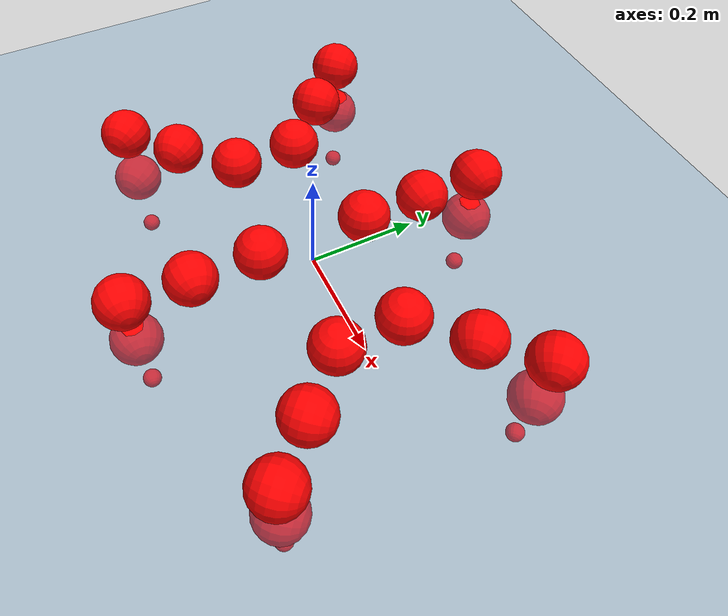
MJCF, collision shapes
<mujoco model="Golem">
  <compiler angle="radian" assetdir="assets" balanceinertia="true" inertiafromgeom="false"/>

  <option timestep="0.005" density="1.2" viscosity="2e-05"/>

  <size nkey="1"/>

  <visual>
    <quality shadowsize="8192"/>
    <map shadowclip="0.5"/>
  </visual>

  <default>
    <default class="/">
      <joint armature="0.01" damping="0.01" frictionloss="0.01"/>
      <geom contype="0" conaffinity="0" group="1" solref="-1000 -80"/>
      <site size="0.01 0.005 0.005" group="5"/>
      <general forcelimited="true" biastype="affine" gainprm="25" biasprm="0 -25 -0.5"/>
      <default class="visual">
        <geom type="mesh" group="2"/>
      </default>
      <default class="collision">
        <geom group="3"/>
      </default>
      <default class="foot">
        <geom size="0.01 0 0" condim="6" group="4" priority="1" solimp="0.015 1 0.01"/>
      </default>
      <default class="reward_collision_sphere">
        <geom group="5" rgba="1 0 0 1"/>
      </default>
    </default>
  </default>

  <asset>
    <texture type="skybox" colorspace="auto" name="//unnamed_texture_0" builtin="gradient" rgb1="0.95 0.95 0.95" rgb2="0.95 0.95 0.95" width="100" height="600"/>
    <texture type="2d" colorspace="auto" name="texplane" builtin="checker" rgb1="0.345 0.575 0.748" rgb2="0.345 0.575 0.748" markrgb="1 1 1" width="512" height="512"/>
    <material name="MatPlane" class="/" texture="texplane" texuniform="true" texrepeat="2 2" specular="0.9"/>
    <mesh name="body" class="/" file="body.stl" scale="0.001 0.001 0.001"/>
    <mesh name="coxa" class="/" file="coxa.stl" scale="0.001 0.001 0.001"/>
    <mesh name="femur" class="/" file="femur.stl" scale="0.001 0.001 0.001"/>
    <mesh name="tibia" class="/" file="tibia.stl" scale="0.001 0.001 0.001"/>
    <mesh name="tarsus" class="/" file="tarsus.stl" scale="0.001 0.001 0.001"/>
  </asset>

  <worldbody>
    <geom name="floor" class="/" size="100 100 0.125" type="plane" group="0" material="MatPlane"/>
    <light name="toplight_shadow" class="/" pos="0 0 5" dir="0.0990148 0.0990148 -0.990148" type="directional" ambient="0.04 0.04 0.04" diffuse="0.55 0.55 0.55" specular="0.12 0.12 0.12"/>
    <light name="toplight_fill" class="/" pos="0 0 5" dir="0.0990148 0.0990148 -0.990148" type="directional" castshadow="false" ambient="0.04 0.04 0.04" diffuse="0.3 0.3 0.3" specular="0.08 0.08 0.08"/>
    <body name="trunk" pos="-0.00137362 0.00202653 0.00230765" quat="1 -7.04334e-05 2.1313e-05 -2.7892e-07">
      <inertial pos="0.00284059 0.00143382 -0.00372661" quat="0.999992 -0.000168069 -0.00273096 -0.00304511" mass="6.11211" diaginertia="0.0467073 0.0141051 0.0145977"/>
      <joint name="//unnamed_joint_0" type="free"/>
      <geom name="//unnamed_geom_1" class="/" pos="0 0 0.0688713" quat="1 0 0 0" type="mesh" rgba="0.9 0.9 0.9 1" mesh="body"/>
      <site name="imu" class="/" pos="0.174106 -0.00164114 0.120666" size="0.0116777"/>
      <camera name="track" class="/" pos="0 -2.12393 0" quat="0.707107 0.707107 0 0" mode="trackcom"/>
      <camera name="ego_camera" class="/" pos="0.177481 0 0.107611" quat="-0.5 -0.5 0.5 0.5"/>
      <body name="coxa_RR" pos="-0.242588 -0.0873319 0.0709829" quat="0.382834 0.000132531 6.11462e-06 -0.923817">
        <inertial pos="0.000619972 0.00194711 -0.00260237" quat="0.99998 -0.00385623 -0.000965201 0.00489101" mass="0.333771" diaginertia="0.0477069 0.0136107 0.0146117"/>
        <joint name="coxa_joint_RR" class="/" pos="0 0 0" axis="0.00577488 -0.00868779 -0.999946" stiffness="0.0101447" range="-3.14327 3.13423" armature="0.0116134" damping="0" frictionloss="0.0118092"/>
        <geom name="//unnamed_geom_2" class="/" type="mesh" rgba="0.2 0.2 0.2 1" mesh="coxa"/>
        <geom name="//unnamed_geom_3" class="reward_collision_sphere" size="0.0467109" pos="-0.0409572 0 0"/>
        <body name="femur_RR" pos="0.0817472 -0.00188143 -0.00575121" quat="0.499719 -0.500252 0.500348 0.499681">
          <inertial pos="-0.00256156 -0.00276367 0.000864753" quat="0.999912 -0.000763585 -0.0121884 0.00509432" mass="0.315064" diaginertia="0.0468861 0.0138176 0.0138268"/>
          <joint name="femur_joint_RR" class="/" pos="0 0 0" axis="-0.0135287 0.00111609 -0.999908" stiffness="0.00604085" range="-3.13473 3.11138" armature="0.0102606" damping="0.000483298" frictionloss="0.0117904"/>
          <geom name="//unnamed_geom_4" class="/" type="mesh" rgba="0.9 0.9 0.9 1" mesh="femur"/>
          <geom name="//unnamed_geom_5" class="reward_collision_sphere" size="0.0467109"/>
          <body name="tibia_RR" pos="9.61337e-05 -0.113614 -0.00198104" quat="0.000166489 1 5.89927e-05 -0.000892849">
            <inertial pos="0.000241446 -0.00203674 0.000856913" quat="0.99999 0.00297354 -0.00251815 -0.00199664" mass="0.313268" diaginertia="0.0459554 0.0127576 0.0137522"/>
            <joint name="tibia_joint_RR" class="/" pos="0 0 0" axis="-0.000867861 0.000547123 0.999999" stiffness="0.00189375" range="-3.08663 3.17668" armature="0.0107446" damping="0.00162657" frictionloss="0.0115742"/>
            <geom name="//unnamed_geom_6" class="/" type="mesh" rgba="0.2 0.2 0.2 1" mesh="tibia"/>
            <geom name="//unnamed_geom_7" class="reward_collision_sphere" size="0.0467109"/>
            <body name="tarsus_RR" pos="0.120848 0.000688715 -0.000269811" quat="1 -2.10387e-05 -0.000227966 -6.05438e-05">
              <inertial pos="0.0821108 0.000636822 0.00266975" quat="0.50605 0.505098 0.491277 0.49743" mass="0.315898" diaginertia="0.0483228 0.013778 0.0142097"/>
              <joint name="tarsus_joint_RR" class="/" pos="0 0 0" axis="-1.01442e-05 9.85289e-05 1" stiffness="0.00499378" range="-3.13555 3.17307" armature="0.0102241" damping="0.0386191" frictionloss="0.0102003"/>
              <geom name="//unnamed_geom_8" class="/" type="mesh" rgba="0.9 0.9 0.9 1" mesh="tarsus"/>
              <geom name="foot_1" class="foot" size="0.0113889" pos="0.152907 0 0" quat="0 -0.707107 0 0.707107"/>
              <geom name="//unnamed_geom_10" class="reward_collision_sphere" size="0.0467109"/>
              <geom name="//unnamed_geom_11" class="reward_collision_sphere" size="0.0175166" pos="0.146763 0 0"/>
              <site name="foot_1" class="foot" pos="0.152907 0 0" quat="0 -0.707107 0 0.707107" size="0.0116777"/>
            </body>
          </body>
        </body>
      </body>
      <body name="coxa_RM" pos="0.000758534 -0.139618 0.0727267" quat="0.706983 -0.000273711 0.000929842 -0.70723">
        <inertial pos="0.00116096 8.96416e-05 -0.00251535" quat="0.999915 -0.0120425 -0.00374354 -0.0033179" mass="0.306358" diaginertia="0.0458003 0.013721 0.0146328"/>
        <joint name="coxa_joint_RM" class="/" pos="0 0 0" axis="0.000343873 -0.00987071 -0.999951" range="-3.19434 3.1725" armature="0.0121812" damping="0.00984624" frictionloss="0.0133331"/>
        <geom name="//unnamed_geom_12" class="/" type="mesh" rgba="0.2 0.2 0.2 1" mesh="coxa"/>
        <geom name="//unnamed_geom_13" class="reward_collision_sphere" size="0.0467109" pos="-0.0409572 0 0"/>
        <body name="femur_RM" pos="0.0831402 7.01535e-05 -0.00160083" quat="0.500375 -0.499818 0.500051 0.499755">
          <inertial pos="0.00223621 -0.00282144 0.000212949" quat="0.999907 0.00812409 0.0102747 -0.00381204" mass="0.313109" diaginertia="0.046276 0.0131089 0.0139458"/>
          <joint name="femur_joint_RM" class="/" pos="0 0 0" axis="-0.0092694 0.00369193 -0.99995" stiffness="0.00159538" range="-3.13466 3.13438" armature="0.0101709" damping="0.0177992" frictionloss="0.0115133"/>
          <geom name="//unnamed_geom_14" class="/" type="mesh" rgba="0.9 0.9 0.9 1" mesh="femur"/>
          <geom name="//unnamed_geom_15" class="reward_collision_sphere" size="0.0467109"/>
          <body name="tibia_RM" pos="-0.00190017 -0.114992 -0.00182902" quat="0.000159301 1 -0.000245936 -0.000176496">
            <inertial pos="0.00149882 0.00177454 -0.000936713" quat="0.999997 0.000294892 -0.00222016 0.000700779" mass="0.308559" diaginertia="0.0463488 0.0127077 0.0136786"/>
            <joint name="tibia_joint_RM" class="/" pos="0 0 0" axis="0.00246025 0.00285775 0.999993" range="-3.12988 3.08352" armature="0.01151" damping="0.0170367" frictionloss="0.0129918"/>
            <geom name="//unnamed_geom_16" class="/" type="mesh" rgba="0.2 0.2 0.2 1" mesh="tibia"/>
            <geom name="//unnamed_geom_17" class="reward_collision_sphere" size="0.0467109"/>
            <body name="tarsus_RM" pos="0.118142 -0.000776601 0.00181095" quat="1 8.26312e-08 -1.05076e-05 7.07523e-06">
              <inertial pos="0.0847665 -0.00138019 0.00099513" quat="0.492984 0.500825 0.503159 0.502964" mass="0.310838" diaginertia="0.0473963 0.0131116 0.0142511"/>
              <joint name="tarsus_joint_RM" class="/" pos="0 0 0" axis="-0.000236377 -0.00136163 0.999999" range="-3.10399 3.08743" armature="0.013213" damping="0.000391703" frictionloss="0.0121447"/>
              <geom name="//unnamed_geom_18" class="/" type="mesh" rgba="0.9 0.9 0.9 1" mesh="tarsus"/>
              <geom name="foot_2" class="foot" size="0.0127762" pos="0.152907 0 0" quat="0 -0.707107 0 0.707107"/>
              <geom name="//unnamed_geom_20" class="reward_collision_sphere" size="0.0467109"/>
              <geom name="//unnamed_geom_21" class="reward_collision_sphere" size="0.0175166" pos="0.146763 0 0"/>
              <site name="foot_2" class="foot" pos="0.152907 0 0" quat="0 -0.707107 0 0.707107" size="0.0116777"/>
            </body>
          </body>
        </body>
      </body>
      <body name="coxa_RF" pos="0.243105 -0.0899182 0.068267" quat="0.924032 -5.11793e-05 -5.37057e-05 -0.382314">
        <inertial pos="-0.00243515 0.00228794 -0.000668053" quat="0.999998 -0.0014253 0.000905063 -0.00118143" mass="0.324695" diaginertia="0.0476156 0.0142105 0.014185"/>
        <joint name="coxa_joint_RF" class="/" pos="0 0 0" axis="0.00098046 -0.00513783 -0.999986" range="-3.15534 3.18616" armature="0.0117188" damping="0.0282044" frictionloss="0.0115979"/>
        <geom name="//unnamed_geom_22" class="/" type="mesh" rgba="0.2 0.2 0.2 1" mesh="coxa"/>
        <geom name="//unnamed_geom_23" class="reward_collision_sphere" size="0.0467109" pos="-0.0409572 0 0"/>
        <body name="femur_RF" pos="0.0821551 -0.00173049 0.00385522" quat="0.499637 -0.49931 0.501253 0.499798">
          <inertial pos="0.0027427 -0.00174666 -0.000648066" quat="0.999911 -0.002749 -0.0126727 -0.0032577" mass="0.309969" diaginertia="0.0473806 0.0127628 0.0138215"/>
          <joint name="femur_joint_RF" class="/" pos="0 0 0" axis="-0.000685081 0.00033603 -1" range="-3.10688 3.19186" armature="0.0117006" damping="0.0157325" frictionloss="0.0120957"/>
          <geom name="//unnamed_geom_24" class="/" type="mesh" rgba="0.9 0.9 0.9 1" mesh="femur"/>
          <geom name="//unnamed_geom_25" class="reward_collision_sphere" size="0.0467109"/>
          <body name="tibia_RF" pos="-0.000366937 -0.111653 -0.00269071" quat="0.000193407 1 -0.000312227 -9.78548e-06">
            <inertial pos="0.00215866 0.000460666 -0.00218085" quat="1 -0.000662611 -0.000140723 5.91654e-05" mass="0.323378" diaginertia="0.0474498 0.0141798 0.014764"/>
            <joint name="tibia_joint_RF" class="/" pos="0 0 0" axis="4.19962e-05 -0.00885889 0.999961" stiffness="0.00551261" range="-3.1885 3.17363" armature="0.0102208" damping="0.00995024" frictionloss="0.011842"/>
            <geom name="//unnamed_geom_26" class="/" type="mesh" rgba="0.2 0.2 0.2 1" mesh="tibia"/>
            <geom name="//unnamed_geom_27" class="reward_collision_sphere" size="0.0467109"/>
            <body name="tarsus_RF" pos="0.117606 -0.00140002 0.000465141" quat="1 -0.000254429 0.000420173 -0.000281851">
              <inertial pos="0.083082 0.00208512 -0.000676678" quat="0.498146 0.501382 0.498533 0.501927" mass="0.318917" diaginertia="0.0487591 0.0132471 0.0148937"/>
              <joint name="tarsus_joint_RF" class="/" pos="0 0 0" axis="0.00362716 0.00926202 0.999951" range="-3.19483 3.09172" armature="0.01276" damping="0.00723514" frictionloss="0.0102575"/>
              <geom name="//unnamed_geom_28" class="/" type="mesh" rgba="0.9 0.9 0.9 1" mesh="tarsus"/>
              <geom name="foot_3" class="foot" size="0.0119781" pos="0.152907 0 0" quat="0 -0.707107 0 0.707107"/>
              <geom name="//unnamed_geom_30" class="reward_collision_sphere" size="0.0467109"/>
              <geom name="//unnamed_geom_31" class="reward_collision_sphere" size="0.0175166" pos="0.146763 0 0"/>
              <site name="foot_3" class="foot" pos="0.152907 0 0" quat="0 -0.707107 0 0.707107" size="0.0116777"/>
            </body>
          </body>
        </body>
      </body>
      <body name="coxa_LR" pos="-0.241181 0.0869816 0.07376" quat="0.382722 -6.36864e-05 7.33137e-05 0.923864">
        <inertial pos="0.00102131 0.00224056 0.00264221" quat="0.999961 0.0055745 0.00491793 -0.00472777" mass="0.317156" diaginertia="0.0476001 0.0132396 0.0151287"/>
        <joint name="coxa_joint_LR" class="/" pos="0 0 0" axis="-0.0041856 0.00268041 -0.999988" stiffness="0.00677099" range="-3.18973 3.09228" armature="0.0104736" damping="0" frictionloss="0.0113881"/>
        <geom name="//unnamed_geom_32" class="/" type="mesh" rgba="0.2 0.2 0.2 1" mesh="coxa"/>
        <geom name="//unnamed_geom_33" class="reward_collision_sphere" size="0.0467109" pos="-0.0409572 0 0"/>
        <body name="femur_LR" pos="0.082285 4.96893e-05 0.00361492" quat="0.500076 -0.499936 0.500005 0.499982">
          <inertial pos="-0.00258726 0.00018677 -0.000395222" quat="0.999938 -0.00167824 -0.00722104 0.00833607" mass="0.318519" diaginertia="0.0464168 0.0134184 0.0142545"/>
          <joint name="femur_joint_LR" class="/" pos="0 0 0" axis="-0.00874876 -0.00401383 0.999954" stiffness="0.00596319" range="-3.08695 3.14193" armature="0.0128239" damping="0" frictionloss="0.012936"/>
          <geom name="//unnamed_geom_34" class="/" type="mesh" rgba="0.9 0.9 0.9 1" mesh="femur"/>
          <geom name="//unnamed_geom_35" class="reward_collision_sphere" size="0.0467109"/>
          <body name="tibia_LR" pos="-0.000973604 -0.116317 -0.000475496" quat="-0.000324548 1 7.62783e-05 -0.0001423">
            <inertial pos="-0.000370164 -0.000279154 -0.00033035" quat="0.999971 -0.00421228 -0.00510484 0.00379198" mass="0.339371" diaginertia="0.0486241 0.0134734 0.0147228"/>
            <joint name="tibia_joint_LR" class="/" pos="0 0 0" axis="-0.00933948 -0.00414485 -0.999948" stiffness="0.00532792" range="-3.18726 3.12792" armature="0.0116174" damping="0" frictionloss="0.0116848"/>
            <geom name="//unnamed_geom_36" class="/" type="mesh" rgba="0.2 0.2 0.2 1" mesh="tibia"/>
            <geom name="//unnamed_geom_37" class="reward_collision_sphere" size="0.0467109"/>
            <body name="tarsus_LR" pos="0.120387 0.00149815 0.000779237" quat="1 0.000317955 0.000114533 0.000465658">
              <inertial pos="0.0799232 0.000277128 0.00198016" quat="0.501902 0.499418 0.500215 0.498459" mass="0.322003" diaginertia="0.0487519 0.0137645 0.0149128"/>
              <joint name="tarsus_joint_LR" class="/" pos="0 0 0" axis="0.00255365 0.00191526 -0.999995" range="-3.14182 3.13708" armature="0.0119161" damping="0" frictionloss="0.0132713"/>
              <geom name="//unnamed_geom_38" class="/" type="mesh" rgba="0.9 0.9 0.9 1" mesh="tarsus"/>
              <geom name="foot_4" class="foot" size="0.0126267" pos="0.152907 0 0" quat="0.707107 0 -0.707107 0"/>
              <geom name="//unnamed_geom_40" class="reward_collision_sphere" size="0.0467109"/>
              <geom name="//unnamed_geom_41" class="reward_collision_sphere" size="0.0175166" pos="0.146763 0 0"/>
              <site name="foot_4" class="foot" pos="0.152907 0 0" quat="0.707107 0 -0.707107 0" size="0.0116777"/>
            </body>
          </body>
        </body>
      </body>
      <body name="coxa_LM" pos="0.000393729 0.138776 0.0688449" quat="0.707048 -0.000317498 -0.00147248 0.707164">
        <inertial pos="0.00291371 -0.00279107 -0.000385322" quat="0.999964 0.00310935 0.00664834 -0.00434836" mass="0.307082" diaginertia="0.0445052 0.0132048 0.013856"/>
        <joint name="coxa_joint_LM" class="/" pos="0 0 0" axis="0.00643807 -0.00329685 -0.999974" range="-3.13592 3.13458" armature="0.0131831" damping="0.0193076" frictionloss="0.011998"/>
        <geom name="//unnamed_geom_42" class="/" type="mesh" rgba="0.2 0.2 0.2 1" mesh="coxa"/>
        <geom name="//unnamed_geom_43" class="reward_collision_sphere" size="0.0467109" pos="-0.0409572 0 0"/>
        <body name="femur_LM" pos="0.0761629 0.00014126 -0.00182874" quat="0.499971 -0.500435 0.499853 0.499741">
          <inertial pos="0.00258344 -0.000182858 -0.00231753" quat="0.999979 0.00125342 0.000910641 0.00636555" mass="0.327929" diaginertia="0.0503681 0.0144107 0.0153925"/>
          <joint name="femur_joint_LM" class="/" pos="0 0 0" axis="0.00585491 0.00731358 0.999956" stiffness="0.00907769" range="-3.13072 3.13002" armature="0.012815" damping="0.00803304" frictionloss="0.0115588"/>
          <geom name="//unnamed_geom_44" class="/" type="mesh" rgba="0.9 0.9 0.9 1" mesh="femur"/>
          <geom name="//unnamed_geom_45" class="reward_collision_sphere" size="0.0467109"/>
          <body name="tibia_LM" pos="-0.00299453 -0.114394 0.000397174" quat="5.64571e-05 0.999999 -0.00114326 0.000108342">
            <inertial pos="0.00175177 0.00185557 0.00260008" quat="0.999967 0.00577 -0.00349988 -0.00445264" mass="0.308293" diaginertia="0.0491449 0.0134471 0.0149526"/>
            <joint name="tibia_joint_LM" class="/" pos="0 0 0" axis="0.00341405 -0.00747574 -0.999966" range="-3.15399 3.19028" armature="0.0113397" damping="0.0228167" frictionloss="0.0103204"/>
            <geom name="//unnamed_geom_46" class="/" type="mesh" rgba="0.2 0.2 0.2 1" mesh="tibia"/>
            <geom name="//unnamed_geom_47" class="reward_collision_sphere" size="0.0467109"/>
            <body name="tarsus_LM" pos="0.115744 0.000356455 0.0016617" quat="0.999999 0.00073386 0.000370073 -0.00112587">
              <inertial pos="0.0803912 0.0011487 -0.00225651" quat="0.499751 0.500421 0.499575 0.500253" mass="0.333452" diaginertia="0.0470971 0.0135149 0.0150233"/>
              <joint name="tarsus_joint_LM" class="/" pos="0 0 0" axis="0.000396856 0.00114858 -0.999999" stiffness="0.0132686" range="-3.18465 3.18371" armature="0.0113937" damping="0.0220164" frictionloss="0.0132634"/>
              <geom name="//unnamed_geom_48" class="/" type="mesh" rgba="0.9 0.9 0.9 1" mesh="tarsus"/>
              <geom name="foot_5" class="foot" size="0.0130142" pos="0.152907 0 0" quat="0.707107 0 -0.707107 0"/>
              <geom name="//unnamed_geom_50" class="reward_collision_sphere" size="0.0467109"/>
              <geom name="//unnamed_geom_51" class="reward_collision_sphere" size="0.0175166" pos="0.146763 0 0"/>
              <site name="foot_5" class="foot" pos="0.152907 0 0" quat="0.707107 0 -0.707107 0" size="0.0116777"/>
            </body>
          </body>
        </body>
      </body>
      <body name="coxa_LF" pos="0.240877 0.0872197 0.0705372" quat="0.923881 0.000102745 -8.3713e-06 0.382679">
        <inertial pos="0.000369333 0.000195208 -0.00265896" quat="0.999976 0.00597154 -0.00350863 0.000162251" mass="0.316307" diaginertia="0.0482126 0.0136435 0.0144999"/>
        <joint name="coxa_joint_LF" class="/" pos="0 0 0" axis="-0.000209363 0.00356331 -0.999994" stiffness="0.0291379" range="-3.19338 3.09443" armature="0.011412" damping="0.0242347" frictionloss="0.0107843"/>
        <geom name="//unnamed_geom_52" class="/" type="mesh" rgba="0.2 0.2 0.2 1" mesh="coxa"/>
        <geom name="//unnamed_geom_53" class="reward_collision_sphere" size="0.0467109" pos="-0.0409572 0 0"/>
        <body name="femur_LF" pos="0.0802773 0.00119402 -0.0015427" quat="0.499874 -0.499809 0.499835 0.500482">
          <inertial pos="-0.00199852 0.00046387 -0.000164204" quat="0.999923 0.0104284 0.00668887 0.000822758" mass="0.301395" diaginertia="0.0461714 0.0132221 0.0136617"/>
          <joint name="femur_joint_LF" class="/" pos="0 0 0" axis="-0.00218466 -0.00195345 0.999996" stiffness="0.00223742" range="-3.10308 3.1779" armature="0.0115256" damping="0.00306693" frictionloss="0.0102774"/>
          <geom name="//unnamed_geom_54" class="/" type="mesh" rgba="0.9 0.9 0.9 1" mesh="femur"/>
          <geom name="//unnamed_geom_55" class="reward_collision_sphere" size="0.0467109"/>
          <body name="tibia_LF" pos="0.000133949 -0.11627 0.00156623" quat="1.27003e-05 1 0.000134074 -7.49566e-05">
            <inertial pos="0.00015312 0.00103481 0.00266062" quat="0.999918 0.000400206 0.00980296 -0.00825006" mass="0.306562" diaginertia="0.0456369 0.0134509 0.0144123"/>
            <joint name="tibia_joint_LF" class="/" pos="0 0 0" axis="-0.00422825 0.00253051 -0.999988" range="-3.14124 3.1413" armature="0.0104991" damping="0.00183335" frictionloss="0.0130977"/>
            <geom name="//unnamed_geom_56" class="/" type="mesh" rgba="0.2 0.2 0.2 1" mesh="tibia"/>
            <geom name="//unnamed_geom_57" class="reward_collision_sphere" size="0.0467109"/>
            <body name="tarsus_LF" pos="0.123722 0.000237261 -0.000531049" quat="1 0.00056733 -0.000153844 0.000277315">
              <inertial pos="0.0837063 3.39014e-05 -0.00250956" quat="0.503398 0.495479 0.500035 0.501054" mass="0.338149" diaginertia="0.0489534 0.0140291 0.0153506"/>
              <joint name="tarsus_joint_LF" class="/" pos="0 0 0" axis="0.00207291 -0.0125752 -0.999919" stiffness="0.0229217" range="-3.15482 3.18824" armature="0.0116421" damping="0.0238391" frictionloss="0.0116833"/>
              <geom name="//unnamed_geom_58" class="/" type="mesh" rgba="0.9 0.9 0.9 1" mesh="tarsus"/>
              <geom name="foot_6" class="foot" size="0.0121661" pos="0.152907 0 0" quat="0.707107 0 -0.707107 0"/>
              <geom name="//unnamed_geom_60" class="reward_collision_sphere" size="0.0467109"/>
              <geom name="//unnamed_geom_61" class="reward_collision_sphere" size="0.0175166" pos="0.146763 0 0"/>
              <site name="foot_6" class="foot" pos="0.152907 0 0" quat="0.707107 0 -0.707107 0" size="0.0116777"/>
            </body>
          </body>
        </body>
      </body>
    </body>
  </worldbody>

  <contact>
    <pair class="/" geom1="floor" geom2="foot_1" name="//unnamed_contact_0"/>
    <pair class="/" geom1="floor" geom2="foot_2" name="//unnamed_contact_1"/>
    <pair class="/" geom1="floor" geom2="foot_3" name="//unnamed_contact_2"/>
    <pair class="/" geom1="floor" geom2="foot_4" name="//unnamed_contact_3"/>
    <pair class="/" geom1="floor" geom2="foot_5" name="//unnamed_contact_4"/>
    <pair class="/" geom1="floor" geom2="foot_6" name="//unnamed_contact_5"/>
  </contact>

  <actuator>
    <general name="coxa_joint_RR" class="/" joint="coxa_joint_RR" forcerange="-8.71544 8.71544" gainprm="27.9488" biasprm="0 -27.9488 -0.574646"/>
    <general name="femur_joint_RR" class="/" joint="femur_joint_RR" forcerange="-8.37161 8.37161" gainprm="27.9488" biasprm="0 -27.9488 -0.574646"/>
    <general name="tibia_joint_RR" class="/" joint="tibia_joint_RR" forcerange="-8.34251 8.34251" gainprm="27.9488" biasprm="0 -27.9488 -0.574646"/>
    <general name="tarsus_joint_RR" class="/" joint="tarsus_joint_RR" forcerange="-8.80025 8.80025" gainprm="27.9488" biasprm="0 -27.9488 -0.574646"/>
    <general name="coxa_joint_RM" class="/" joint="coxa_joint_RM" forcerange="-9.08508 9.08508" gainprm="27.9488" biasprm="0 -27.9488 -0.574646"/>
    <general name="femur_joint_RM" class="/" joint="femur_joint_RM" forcerange="-7.89124 7.89124" gainprm="27.9488" biasprm="0 -27.9488 -0.574646"/>
    <general name="tibia_joint_RM" class="/" joint="tibia_joint_RM" forcerange="-7.9248 7.9248" gainprm="27.9488" biasprm="0 -27.9488 -0.574646"/>
    <general name="tarsus_joint_RM" class="/" joint="tarsus_joint_RM" forcerange="-8.65546 8.65546" gainprm="27.9488" biasprm="0 -27.9488 -0.574646"/>
    <general name="coxa_joint_RF" class="/" joint="coxa_joint_RF" forcerange="-8.8717 8.8717" gainprm="27.9488" biasprm="0 -27.9488 -0.574646"/>
    <general name="femur_joint_RF" class="/" joint="femur_joint_RF" forcerange="-7.8081 7.8081" gainprm="27.9488" biasprm="0 -27.9488 -0.574646"/>
    <general name="tibia_joint_RF" class="/" joint="tibia_joint_RF" forcerange="-9.22848 9.22848" gainprm="27.9488" biasprm="0 -27.9488 -0.574646"/>
    <general name="tarsus_joint_RF" class="/" joint="tarsus_joint_RF" forcerange="-9.28767 9.28767" gainprm="27.9488" biasprm="0 -27.9488 -0.574646"/>
    <general name="coxa_joint_LR" class="/" joint="coxa_joint_LR" forcerange="-8.4447 8.4447" gainprm="27.9488" biasprm="0 -27.9488 -0.574646"/>
    <general name="femur_joint_LR" class="/" joint="femur_joint_LR" forcerange="-8.33532 8.33532" gainprm="27.9488" biasprm="0 -27.9488 -0.574646"/>
    <general name="tibia_joint_LR" class="/" joint="tibia_joint_LR" forcerange="-8.71976 8.71976" gainprm="27.9488" biasprm="0 -27.9488 -0.574646"/>
    <general name="tarsus_joint_LR" class="/" joint="tarsus_joint_LR" forcerange="-9.39495 9.39495" gainprm="27.9488" biasprm="0 -27.9488 -0.574646"/>
    <general name="coxa_joint_LM" class="/" joint="coxa_joint_LM" forcerange="-8.60912 8.60912" gainprm="27.9488" biasprm="0 -27.9488 -0.574646"/>
    <general name="femur_joint_LM" class="/" joint="femur_joint_LM" forcerange="-8.43696 8.43696" gainprm="27.9488" biasprm="0 -27.9488 -0.574646"/>
    <general name="tibia_joint_LM" class="/" joint="tibia_joint_LM" forcerange="-8.4401 8.4401" gainprm="27.9488" biasprm="0 -27.9488 -0.574646"/>
    <general name="tarsus_joint_LM" class="/" joint="tarsus_joint_LM" forcerange="-8.35115 8.35115" gainprm="27.9488" biasprm="0 -27.9488 -0.574646"/>
    <general name="coxa_joint_LF" class="/" joint="coxa_joint_LF" forcerange="-9.31369 9.31369" gainprm="27.9488" biasprm="0 -27.9488 -0.574646"/>
    <general name="femur_joint_LF" class="/" joint="femur_joint_LF" forcerange="-8.22154 8.22154" gainprm="27.9488" biasprm="0 -27.9488 -0.574646"/>
    <general name="tibia_joint_LF" class="/" joint="tibia_joint_LF" forcerange="-9.22439 9.22439" gainprm="27.9488" biasprm="0 -27.9488 -0.574646"/>
    <general name="tarsus_joint_LF" class="/" joint="tarsus_joint_LF" forcerange="-7.81482 7.81482" gainprm="27.9488" biasprm="0 -27.9488 -0.574646"/>
  </actuator>

  <sensor>
    <gyro site="imu" name="imu_angular_velocity"/>
    <velocimeter site="imu" name="imu_linear_velocity"/>
    <framelinvel objtype="site" objname="foot_1" name="foot_1_global_linear_velocity"/>
    <framelinvel objtype="site" objname="foot_2" name="foot_2_global_linear_velocity"/>
    <framelinvel objtype="site" objname="foot_3" name="foot_3_global_linear_velocity"/>
    <framelinvel objtype="site" objname="foot_4" name="foot_4_global_linear_velocity"/>
    <framelinvel objtype="site" objname="foot_5" name="foot_5_global_linear_velocity"/>
    <framelinvel objtype="site" objname="foot_6" name="foot_6_global_linear_velocity"/>
  </sensor>

  <keyframe>
    <key name="home" qpos="0 0 0.1457 1 0 0 0 0 0 0 0 0 0 0 0 0 0 0 0 0 0 0 0 0 0 0 0 0 0 0 0"/>
  </keyframe>
</mujoco>
